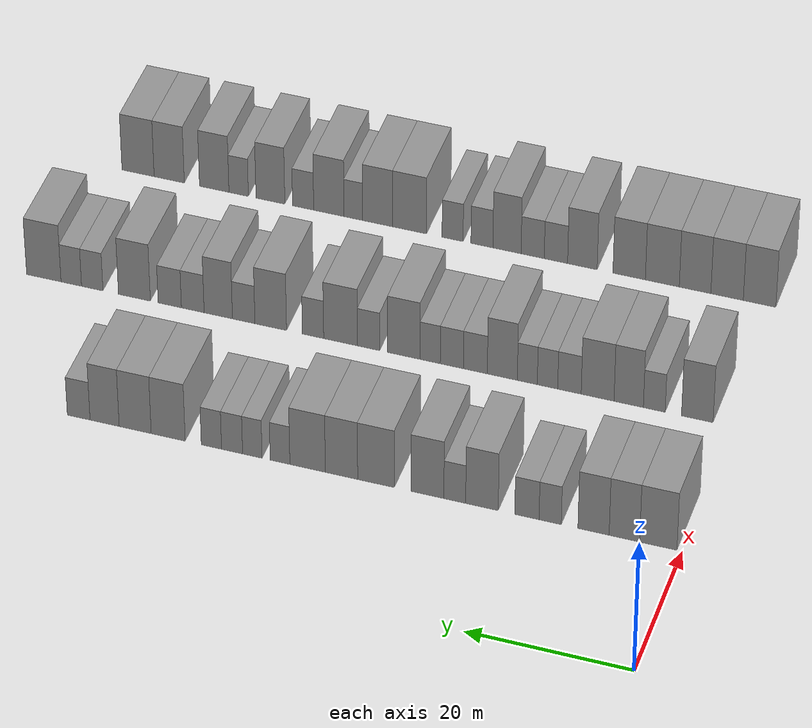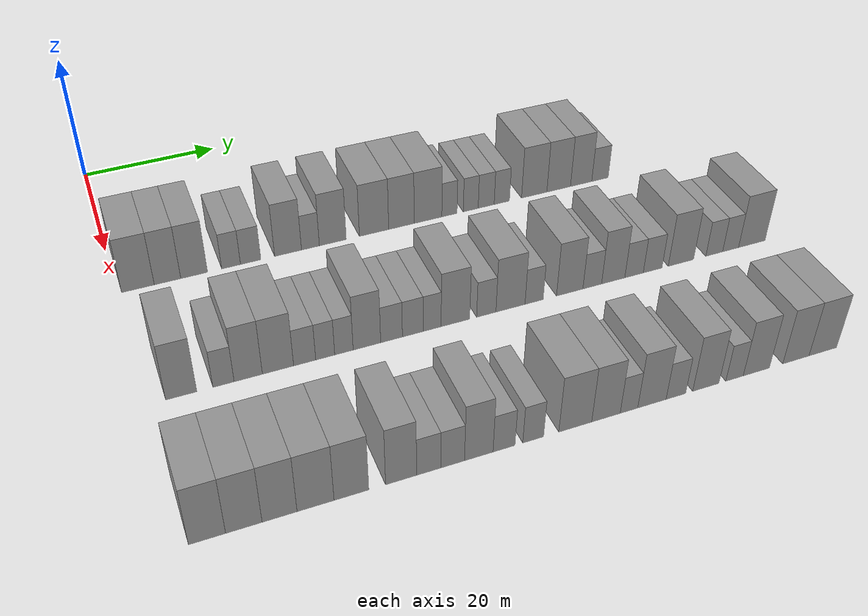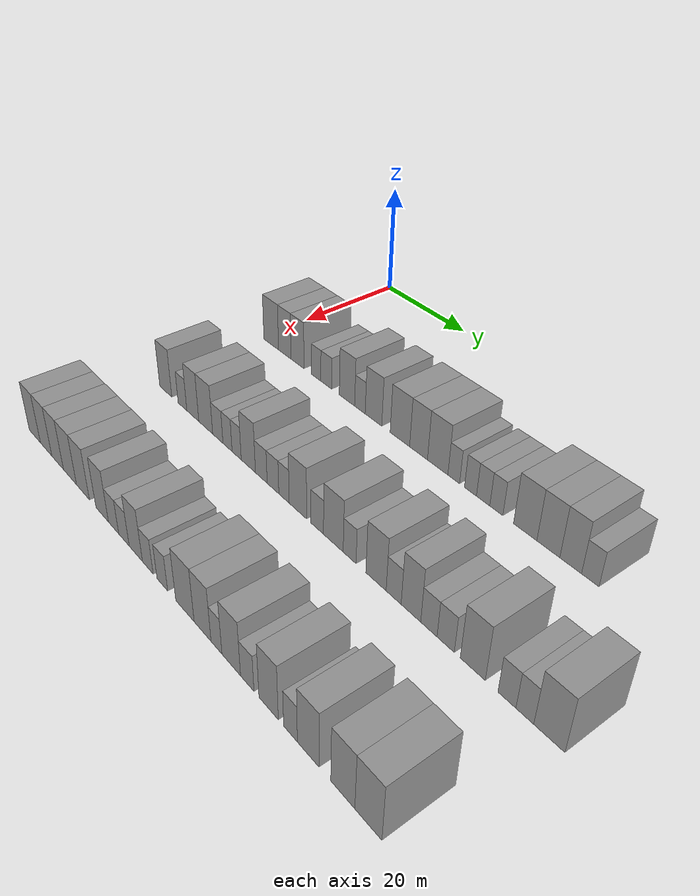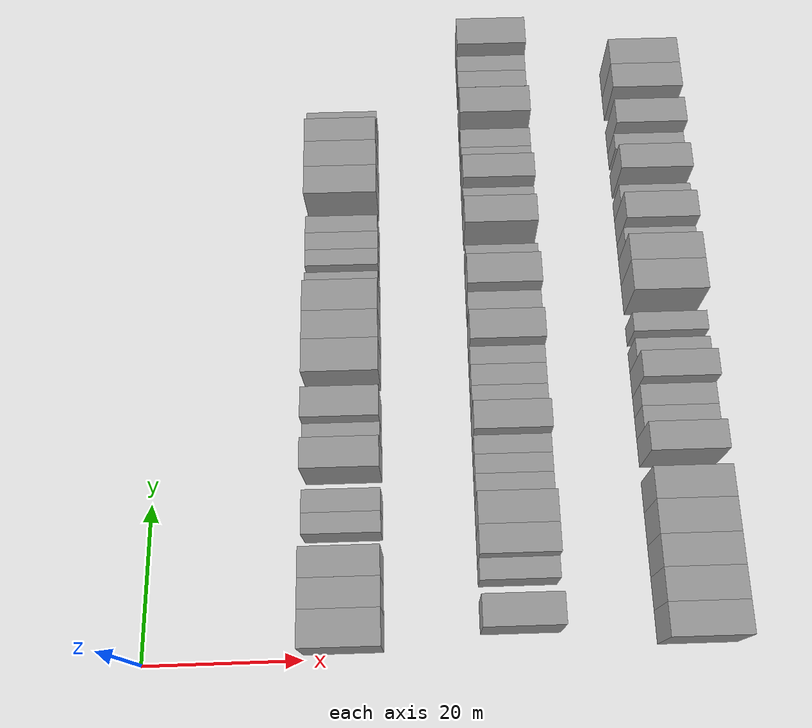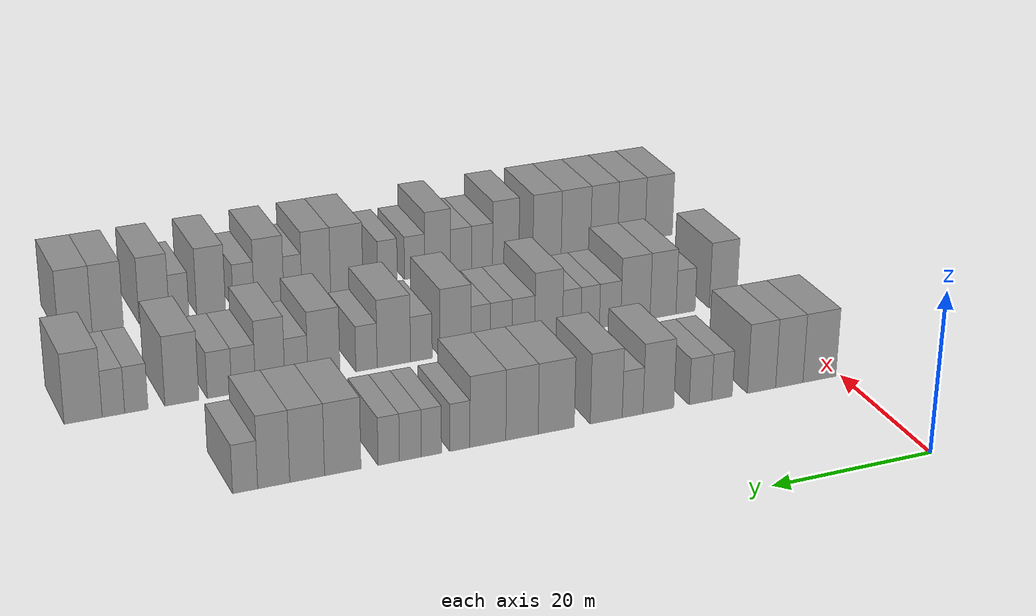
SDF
<sdf version="1.6">
 <world name="default">
  <model name="building_65">
   <static>1</static>
   <pose>25.0000 2.9038 0 0.000000 0.000000 0.000000</pose>
   <link name="link">
    <pose>0 0 4.50 0 0 0</pose>
    <collision name="collision"><geometry><box><size>10.0000 4.4490 9.0000</size></box></geometry></collision>
    <visual name="visual">
     <cast_shadows>0</cast_shadows>
     <geometry><box><size>10.0000 4.4490 9.0000</size></box></geometry>
     <material>
      <script>
       <uri>model://grey_wall/materials/scripts</uri>
       <uri>model://grey_wall/materials/textures</uri>
       <name>vrc/grey_wall</name>
      </script>
     </material>
    </visual>
   </link>
  </model>
  <model name="building_66">
   <static>1</static>
   <pose>25.0000 6.9546 0 0.000000 0.000000 0.000000</pose>
   <link name="link">
    <pose>0 0 4.50 0 0 0</pose>
    <collision name="collision"><geometry><box><size>10.0000 3.6524 9.0000</size></box></geometry></collision>
    <visual name="visual">
     <cast_shadows>0</cast_shadows>
     <geometry><box><size>10.0000 3.6524 9.0000</size></box></geometry>
     <material>
      <script>
       <uri>model://grey_wall/materials/scripts</uri>
       <uri>model://grey_wall/materials/textures</uri>
       <name>vrc/grey_wall</name>
      </script>
     </material>
    </visual>
   </link>
  </model>
  <model name="building_67">
   <static>1</static>
   <pose>25.0000 10.6496 0 0.000000 0.000000 0.000000</pose>
   <link name="link">
    <pose>0 0 4.50 0 0 0</pose>
    <collision name="collision"><geometry><box><size>10.0000 3.7375 9.0000</size></box></geometry></collision>
    <visual name="visual">
     <cast_shadows>0</cast_shadows>
     <geometry><box><size>10.0000 3.7375 9.0000</size></box></geometry>
     <material>
      <script>
       <uri>model://grey_wall/materials/scripts</uri>
       <uri>model://grey_wall/materials/textures</uri>
       <name>vrc/grey_wall</name>
      </script>
     </material>
    </visual>
   </link>
  </model>
  <model name="building_68">
   <static>1</static>
   <pose>25.0000 15.8552 0 0.000000 0.000000 0.000000</pose>
   <link name="link">
    <pose>0 0 3.00 0 0 0</pose>
    <collision name="collision"><geometry><box><size>10.0000 2.6739 6.0000</size></box></geometry></collision>
    <visual name="visual">
     <cast_shadows>0</cast_shadows>
     <geometry><box><size>10.0000 2.6739 6.0000</size></box></geometry>
     <material>
      <script>
       <uri>model://grey_wall/materials/scripts</uri>
       <uri>model://grey_wall/materials/textures</uri>
       <name>vrc/grey_wall</name>
      </script>
     </material>
    </visual>
   </link>
  </model>
  <model name="building_69">
   <static>1</static>
   <pose>25.0000 18.6570 0 0.000000 0.000000 0.000000</pose>
   <link name="link">
    <pose>0 0 3.00 0 0 0</pose>
    <collision name="collision"><geometry><box><size>10.0000 2.9297 6.0000</size></box></geometry></collision>
    <visual name="visual">
     <cast_shadows>0</cast_shadows>
     <geometry><box><size>10.0000 2.9297 6.0000</size></box></geometry>
     <material>
      <script>
       <uri>model://grey_wall/materials/scripts</uri>
       <uri>model://grey_wall/materials/textures</uri>
       <name>vrc/grey_wall</name>
      </script>
     </material>
    </visual>
   </link>
  </model>
  <model name="building_70">
   <static>1</static>
   <pose>25.0000 24.0942 0 0.000000 0.000000 0.000000</pose>
   <link name="link">
    <pose>0 0 4.50 0 0 0</pose>
    <collision name="collision"><geometry><box><size>10.0000 3.9446 9.0000</size></box></geometry></collision>
    <visual name="visual">
     <cast_shadows>0</cast_shadows>
     <geometry><box><size>10.0000 3.9446 9.0000</size></box></geometry>
     <material>
      <script>
       <uri>model://grey_wall/materials/scripts</uri>
       <uri>model://grey_wall/materials/textures</uri>
       <name>vrc/grey_wall</name>
      </script>
     </material>
    </visual>
   </link>
  </model>
  <model name="building_71">
   <static>1</static>
   <pose>25.0000 27.3878 0 0.000000 0.000000 0.000000</pose>
   <link name="link">
    <pose>0 0 3.00 0 0 0</pose>
    <collision name="collision"><geometry><box><size>10.0000 2.6427 6.0000</size></box></geometry></collision>
    <visual name="visual">
     <cast_shadows>0</cast_shadows>
     <geometry><box><size>10.0000 2.6427 6.0000</size></box></geometry>
     <material>
      <script>
       <uri>model://grey_wall/materials/scripts</uri>
       <uri>model://grey_wall/materials/textures</uri>
       <name>vrc/grey_wall</name>
      </script>
     </material>
    </visual>
   </link>
  </model>
  <model name="building_72">
   <static>1</static>
   <pose>25.0000 30.7249 0 0.000000 0.000000 0.000000</pose>
   <link name="link">
    <pose>0 0 4.50 0 0 0</pose>
    <collision name="collision"><geometry><box><size>10.0000 4.0315 9.0000</size></box></geometry></collision>
    <visual name="visual">
     <cast_shadows>0</cast_shadows>
     <geometry><box><size>10.0000 4.0315 9.0000</size></box></geometry>
     <material>
      <script>
       <uri>model://grey_wall/materials/scripts</uri>
       <uri>model://grey_wall/materials/textures</uri>
       <name>vrc/grey_wall</name>
      </script>
     </material>
    </visual>
   </link>
  </model>
  <model name="building_73">
   <static>1</static>
   <pose>25.0000 36.9864 0 0.000000 0.000000 0.000000</pose>
   <link name="link">
    <pose>0 0 4.50 0 0 0</pose>
    <collision name="collision"><geometry><box><size>10.0000 4.4914 9.0000</size></box></geometry></collision>
    <visual name="visual">
     <cast_shadows>0</cast_shadows>
     <geometry><box><size>10.0000 4.4914 9.0000</size></box></geometry>
     <material>
      <script>
       <uri>model://grey_wall/materials/scripts</uri>
       <uri>model://grey_wall/materials/textures</uri>
       <name>vrc/grey_wall</name>
      </script>
     </material>
    </visual>
   </link>
  </model>
  <model name="building_74">
   <static>1</static>
   <pose>25.0000 41.2148 0 0.000000 0.000000 0.000000</pose>
   <link name="link">
    <pose>0 0 4.50 0 0 0</pose>
    <collision name="collision"><geometry><box><size>10.0000 3.9655 9.0000</size></box></geometry></collision>
    <visual name="visual">
     <cast_shadows>0</cast_shadows>
     <geometry><box><size>10.0000 3.9655 9.0000</size></box></geometry>
     <material>
      <script>
       <uri>model://grey_wall/materials/scripts</uri>
       <uri>model://grey_wall/materials/textures</uri>
       <name>vrc/grey_wall</name>
      </script>
     </material>
    </visual>
   </link>
  </model>
  <model name="building_75">
   <static>1</static>
   <pose>25.0000 45.3831 0 0.000000 0.000000 0.000000</pose>
   <link name="link">
    <pose>0 0 4.50 0 0 0</pose>
    <collision name="collision"><geometry><box><size>10.0000 4.3713 9.0000</size></box></geometry></collision>
    <visual name="visual">
     <cast_shadows>0</cast_shadows>
     <geometry><box><size>10.0000 4.3713 9.0000</size></box></geometry>
     <material>
      <script>
       <uri>model://grey_wall/materials/scripts</uri>
       <uri>model://grey_wall/materials/textures</uri>
       <name>vrc/grey_wall</name>
      </script>
     </material>
    </visual>
   </link>
  </model>
  <model name="building_76">
   <static>1</static>
   <pose>25.0000 48.7831 0 0.000000 0.000000 0.000000</pose>
   <link name="link">
    <pose>0 0 3.00 0 0 0</pose>
    <collision name="collision"><geometry><box><size>10.0000 2.4286 6.0000</size></box></geometry></collision>
    <visual name="visual">
     <cast_shadows>0</cast_shadows>
     <geometry><box><size>10.0000 2.4286 6.0000</size></box></geometry>
     <material>
      <script>
       <uri>model://grey_wall/materials/scripts</uri>
       <uri>model://grey_wall/materials/textures</uri>
       <name>vrc/grey_wall</name>
      </script>
     </material>
    </visual>
   </link>
  </model>
  <model name="building_77">
   <static>1</static>
   <pose>25.0000 52.2025 0 0.000000 0.000000 0.000000</pose>
   <link name="link">
    <pose>0 0 3.00 0 0 0</pose>
    <collision name="collision"><geometry><box><size>10.0000 2.4101 6.0000</size></box></geometry></collision>
    <visual name="visual">
     <cast_shadows>0</cast_shadows>
     <geometry><box><size>10.0000 2.4101 6.0000</size></box></geometry>
     <material>
      <script>
       <uri>model://grey_wall/materials/scripts</uri>
       <uri>model://grey_wall/materials/textures</uri>
       <name>vrc/grey_wall</name>
      </script>
     </material>
    </visual>
   </link>
  </model>
  <model name="building_78">
   <static>1</static>
   <pose>25.0000 54.7113 0 0.000000 0.000000 0.000000</pose>
   <link name="link">
    <pose>0 0 3.00 0 0 0</pose>
    <collision name="collision"><geometry><box><size>10.0000 2.6075 6.0000</size></box></geometry></collision>
    <visual name="visual">
     <cast_shadows>0</cast_shadows>
     <geometry><box><size>10.0000 2.6075 6.0000</size></box></geometry>
     <material>
      <script>
       <uri>model://grey_wall/materials/scripts</uri>
       <uri>model://grey_wall/materials/textures</uri>
       <name>vrc/grey_wall</name>
      </script>
     </material>
    </visual>
   </link>
  </model>
  <model name="building_79">
   <static>1</static>
   <pose>25.0000 57.2713 0 0.000000 0.000000 0.000000</pose>
   <link name="link">
    <pose>0 0 3.00 0 0 0</pose>
    <collision name="collision"><geometry><box><size>10.0000 2.5126 6.0000</size></box></geometry></collision>
    <visual name="visual">
     <cast_shadows>0</cast_shadows>
     <geometry><box><size>10.0000 2.5126 6.0000</size></box></geometry>
     <material>
      <script>
       <uri>model://grey_wall/materials/scripts</uri>
       <uri>model://grey_wall/materials/textures</uri>
       <name>vrc/grey_wall</name>
      </script>
     </material>
    </visual>
   </link>
  </model>
  <model name="building_80">
   <static>1</static>
   <pose>25.0000 62.6492 0 0.000000 0.000000 0.000000</pose>
   <link name="link">
    <pose>0 0 4.50 0 0 0</pose>
    <collision name="collision"><geometry><box><size>10.0000 4.2431 9.0000</size></box></geometry></collision>
    <visual name="visual">
     <cast_shadows>0</cast_shadows>
     <geometry><box><size>10.0000 4.2431 9.0000</size></box></geometry>
     <material>
      <script>
       <uri>model://grey_wall/materials/scripts</uri>
       <uri>model://grey_wall/materials/textures</uri>
       <name>vrc/grey_wall</name>
      </script>
     </material>
    </visual>
   </link>
  </model>
  <model name="building_81">
   <static>1</static>
   <pose>25.0000 66.7726 0 0.000000 0.000000 0.000000</pose>
   <link name="link">
    <pose>0 0 4.50 0 0 0</pose>
    <collision name="collision"><geometry><box><size>10.0000 4.0038 9.0000</size></box></geometry></collision>
    <visual name="visual">
     <cast_shadows>0</cast_shadows>
     <geometry><box><size>10.0000 4.0038 9.0000</size></box></geometry>
     <material>
      <script>
       <uri>model://grey_wall/materials/scripts</uri>
       <uri>model://grey_wall/materials/textures</uri>
       <name>vrc/grey_wall</name>
      </script>
     </material>
    </visual>
   </link>
  </model>
  <model name="building_82">
   <static>1</static>
   <pose>25.0000 70.6003 0 0.000000 0.000000 0.000000</pose>
   <link name="link">
    <pose>0 0 4.50 0 0 0</pose>
    <collision name="collision"><geometry><box><size>10.0000 3.6515 9.0000</size></box></geometry></collision>
    <visual name="visual">
     <cast_shadows>0</cast_shadows>
     <geometry><box><size>10.0000 3.6515 9.0000</size></box></geometry>
     <material>
      <script>
       <uri>model://grey_wall/materials/scripts</uri>
       <uri>model://grey_wall/materials/textures</uri>
       <name>vrc/grey_wall</name>
      </script>
     </material>
    </visual>
   </link>
  </model>
  <model name="building_83">
   <static>1</static>
   <pose>25.0000 73.8498 0 0.000000 0.000000 0.000000</pose>
   <link name="link">
    <pose>0 0 3.00 0 0 0</pose>
    <collision name="collision"><geometry><box><size>10.0000 2.8474 6.0000</size></box></geometry></collision>
    <visual name="visual">
     <cast_shadows>0</cast_shadows>
     <geometry><box><size>10.0000 2.8474 6.0000</size></box></geometry>
     <material>
      <script>
       <uri>model://grey_wall/materials/scripts</uri>
       <uri>model://grey_wall/materials/textures</uri>
       <name>vrc/grey_wall</name>
      </script>
     </material>
    </visual>
   </link>
  </model>
  <model name="building_187">
   <static>1</static>
   <pose>47.0000 4.3625 0 0.000000 0.000000 0.000000</pose>
   <link name="link">
    <pose>0 0 4.50 0 0 0</pose>
    <collision name="collision"><geometry><box><size>10.0000 3.8573 9.0000</size></box></geometry></collision>
    <visual name="visual">
     <cast_shadows>0</cast_shadows>
     <geometry><box><size>10.0000 3.8573 9.0000</size></box></geometry>
     <material>
      <script>
       <uri>model://grey_wall/materials/scripts</uri>
       <uri>model://grey_wall/materials/textures</uri>
       <name>vrc/grey_wall</name>
      </script>
     </material>
    </visual>
   </link>
  </model>
  <model name="building_188">
   <static>1</static>
   <pose>47.0000 9.6291 0 0.000000 0.000000 0.000000</pose>
   <link name="link">
    <pose>0 0 3.00 0 0 0</pose>
    <collision name="collision"><geometry><box><size>10.0000 2.6760 6.0000</size></box></geometry></collision>
    <visual name="visual">
     <cast_shadows>0</cast_shadows>
     <geometry><box><size>10.0000 2.6760 6.0000</size></box></geometry>
     <material>
      <script>
       <uri>model://grey_wall/materials/scripts</uri>
       <uri>model://grey_wall/materials/textures</uri>
       <name>vrc/grey_wall</name>
      </script>
     </material>
    </visual>
   </link>
  </model>
  <model name="building_189">
   <static>1</static>
   <pose>47.0000 12.7702 0 0.000000 0.000000 0.000000</pose>
   <link name="link">
    <pose>0 0 4.50 0 0 0</pose>
    <collision name="collision"><geometry><box><size>10.0000 3.6062 9.0000</size></box></geometry></collision>
    <visual name="visual">
     <cast_shadows>0</cast_shadows>
     <geometry><box><size>10.0000 3.6062 9.0000</size></box></geometry>
     <material>
      <script>
       <uri>model://grey_wall/materials/scripts</uri>
       <uri>model://grey_wall/materials/textures</uri>
       <name>vrc/grey_wall</name>
      </script>
     </material>
    </visual>
   </link>
  </model>
  <model name="building_190">
   <static>1</static>
   <pose>47.0000 16.5970 0 0.000000 0.000000 0.000000</pose>
   <link name="link">
    <pose>0 0 4.50 0 0 0</pose>
    <collision name="collision"><geometry><box><size>10.0000 4.0472 9.0000</size></box></geometry></collision>
    <visual name="visual">
     <cast_shadows>0</cast_shadows>
     <geometry><box><size>10.0000 4.0472 9.0000</size></box></geometry>
     <material>
      <script>
       <uri>model://grey_wall/materials/scripts</uri>
       <uri>model://grey_wall/materials/textures</uri>
       <name>vrc/grey_wall</name>
      </script>
     </material>
    </visual>
   </link>
  </model>
  <model name="building_191">
   <static>1</static>
   <pose>47.0000 20.0705 0 0.000000 0.000000 0.000000</pose>
   <link name="link">
    <pose>0 0 3.00 0 0 0</pose>
    <collision name="collision"><geometry><box><size>10.0000 2.8999 6.0000</size></box></geometry></collision>
    <visual name="visual">
     <cast_shadows>0</cast_shadows>
     <geometry><box><size>10.0000 2.8999 6.0000</size></box></geometry>
     <material>
      <script>
       <uri>model://grey_wall/materials/scripts</uri>
       <uri>model://grey_wall/materials/textures</uri>
       <name>vrc/grey_wall</name>
      </script>
     </material>
    </visual>
   </link>
  </model>
  <model name="building_192">
   <static>1</static>
   <pose>47.0000 22.7829 0 0.000000 0.000000 0.000000</pose>
   <link name="link">
    <pose>0 0 3.00 0 0 0</pose>
    <collision name="collision"><geometry><box><size>10.0000 2.5249 6.0000</size></box></geometry></collision>
    <visual name="visual">
     <cast_shadows>0</cast_shadows>
     <geometry><box><size>10.0000 2.5249 6.0000</size></box></geometry>
     <material>
      <script>
       <uri>model://grey_wall/materials/scripts</uri>
       <uri>model://grey_wall/materials/textures</uri>
       <name>vrc/grey_wall</name>
      </script>
     </material>
    </visual>
   </link>
  </model>
  <model name="building_193">
   <static>1</static>
   <pose>47.0000 25.2817 0 0.000000 0.000000 0.000000</pose>
   <link name="link">
    <pose>0 0 3.00 0 0 0</pose>
    <collision name="collision"><geometry><box><size>10.0000 2.4728 6.0000</size></box></geometry></collision>
    <visual name="visual">
     <cast_shadows>0</cast_shadows>
     <geometry><box><size>10.0000 2.4728 6.0000</size></box></geometry>
     <material>
      <script>
       <uri>model://grey_wall/materials/scripts</uri>
       <uri>model://grey_wall/materials/textures</uri>
       <name>vrc/grey_wall</name>
      </script>
     </material>
    </visual>
   </link>
  </model>
  <model name="building_194">
   <static>1</static>
   <pose>47.0000 28.3837 0 0.000000 0.000000 0.000000</pose>
   <link name="link">
    <pose>0 0 4.50 0 0 0</pose>
    <collision name="collision"><geometry><box><size>10.0000 3.7311 9.0000</size></box></geometry></collision>
    <visual name="visual">
     <cast_shadows>0</cast_shadows>
     <geometry><box><size>10.0000 3.7311 9.0000</size></box></geometry>
     <material>
      <script>
       <uri>model://grey_wall/materials/scripts</uri>
       <uri>model://grey_wall/materials/textures</uri>
       <name>vrc/grey_wall</name>
      </script>
     </material>
    </visual>
   </link>
  </model>
  <model name="building_195">
   <static>1</static>
   <pose>47.0000 31.7438 0 0.000000 0.000000 0.000000</pose>
   <link name="link">
    <pose>0 0 3.00 0 0 0</pose>
    <collision name="collision"><geometry><box><size>10.0000 2.9891 6.0000</size></box></geometry></collision>
    <visual name="visual">
     <cast_shadows>0</cast_shadows>
     <geometry><box><size>10.0000 2.9891 6.0000</size></box></geometry>
     <material>
      <script>
       <uri>model://grey_wall/materials/scripts</uri>
       <uri>model://grey_wall/materials/textures</uri>
       <name>vrc/grey_wall</name>
      </script>
     </material>
    </visual>
   </link>
  </model>
  <model name="building_196">
   <static>1</static>
   <pose>47.0000 34.6814 0 0.000000 0.000000 0.000000</pose>
   <link name="link">
    <pose>0 0 3.00 0 0 0</pose>
    <collision name="collision"><geometry><box><size>10.0000 2.8862 6.0000</size></box></geometry></collision>
    <visual name="visual">
     <cast_shadows>0</cast_shadows>
     <geometry><box><size>10.0000 2.8862 6.0000</size></box></geometry>
     <material>
      <script>
       <uri>model://grey_wall/materials/scripts</uri>
       <uri>model://grey_wall/materials/textures</uri>
       <name>vrc/grey_wall</name>
      </script>
     </material>
    </visual>
   </link>
  </model>
  <model name="building_197">
   <static>1</static>
   <pose>47.0000 37.3802 0 0.000000 0.000000 0.000000</pose>
   <link name="link">
    <pose>0 0 3.00 0 0 0</pose>
    <collision name="collision"><geometry><box><size>10.0000 2.5113 6.0000</size></box></geometry></collision>
    <visual name="visual">
     <cast_shadows>0</cast_shadows>
     <geometry><box><size>10.0000 2.5113 6.0000</size></box></geometry>
     <material>
      <script>
       <uri>model://grey_wall/materials/scripts</uri>
       <uri>model://grey_wall/materials/textures</uri>
       <name>vrc/grey_wall</name>
      </script>
     </material>
    </visual>
   </link>
  </model>
  <model name="building_198">
   <static>1</static>
   <pose>47.0000 40.6746 0 0.000000 0.000000 0.000000</pose>
   <link name="link">
    <pose>0 0 4.50 0 0 0</pose>
    <collision name="collision"><geometry><box><size>10.0000 4.0774 9.0000</size></box></geometry></collision>
    <visual name="visual">
     <cast_shadows>0</cast_shadows>
     <geometry><box><size>10.0000 4.0774 9.0000</size></box></geometry>
     <material>
      <script>
       <uri>model://grey_wall/materials/scripts</uri>
       <uri>model://grey_wall/materials/textures</uri>
       <name>vrc/grey_wall</name>
      </script>
     </material>
    </visual>
   </link>
  </model>
  <model name="building_199">
   <static>1</static>
   <pose>47.0000 45.1107 0 0.000000 0.000000 0.000000</pose>
   <link name="link">
    <pose>0 0 3.00 0 0 0</pose>
    <collision name="collision"><geometry><box><size>10.0000 2.7949 6.0000</size></box></geometry></collision>
    <visual name="visual">
     <cast_shadows>0</cast_shadows>
     <geometry><box><size>10.0000 2.7949 6.0000</size></box></geometry>
     <material>
      <script>
       <uri>model://grey_wall/materials/scripts</uri>
       <uri>model://grey_wall/materials/textures</uri>
       <name>vrc/grey_wall</name>
      </script>
     </material>
    </visual>
   </link>
  </model>
  <model name="building_200">
   <static>1</static>
   <pose>47.0000 48.6398 0 0.000000 0.000000 0.000000</pose>
   <link name="link">
    <pose>0 0 4.50 0 0 0</pose>
    <collision name="collision"><geometry><box><size>10.0000 4.2632 9.0000</size></box></geometry></collision>
    <visual name="visual">
     <cast_shadows>0</cast_shadows>
     <geometry><box><size>10.0000 4.2632 9.0000</size></box></geometry>
     <material>
      <script>
       <uri>model://grey_wall/materials/scripts</uri>
       <uri>model://grey_wall/materials/textures</uri>
       <name>vrc/grey_wall</name>
      </script>
     </material>
    </visual>
   </link>
  </model>
  <model name="building_201">
   <static>1</static>
   <pose>47.0000 52.1205 0 0.000000 0.000000 0.000000</pose>
   <link name="link">
    <pose>0 0 3.00 0 0 0</pose>
    <collision name="collision"><geometry><box><size>10.0000 2.6982 6.0000</size></box></geometry></collision>
    <visual name="visual">
     <cast_shadows>0</cast_shadows>
     <geometry><box><size>10.0000 2.6982 6.0000</size></box></geometry>
     <material>
      <script>
       <uri>model://grey_wall/materials/scripts</uri>
       <uri>model://grey_wall/materials/textures</uri>
       <name>vrc/grey_wall</name>
      </script>
     </material>
    </visual>
   </link>
  </model>
  <model name="building_202">
   <static>1</static>
   <pose>47.0000 57.4755 0 0.000000 0.000000 0.000000</pose>
   <link name="link">
    <pose>0 0 4.50 0 0 0</pose>
    <collision name="collision"><geometry><box><size>10.0000 4.0118 9.0000</size></box></geometry></collision>
    <visual name="visual">
     <cast_shadows>0</cast_shadows>
     <geometry><box><size>10.0000 4.0118 9.0000</size></box></geometry>
     <material>
      <script>
       <uri>model://grey_wall/materials/scripts</uri>
       <uri>model://grey_wall/materials/textures</uri>
       <name>vrc/grey_wall</name>
      </script>
     </material>
    </visual>
   </link>
  </model>
  <model name="building_203">
   <static>1</static>
   <pose>47.0000 60.9143 0 0.000000 0.000000 0.000000</pose>
   <link name="link">
    <pose>0 0 3.00 0 0 0</pose>
    <collision name="collision"><geometry><box><size>10.0000 2.8658 6.0000</size></box></geometry></collision>
    <visual name="visual">
     <cast_shadows>0</cast_shadows>
     <geometry><box><size>10.0000 2.8658 6.0000</size></box></geometry>
     <material>
      <script>
       <uri>model://grey_wall/materials/scripts</uri>
       <uri>model://grey_wall/materials/textures</uri>
       <name>vrc/grey_wall</name>
      </script>
     </material>
    </visual>
   </link>
  </model>
  <model name="building_204">
   <static>1</static>
   <pose>47.0000 64.1534 0 0.000000 0.000000 0.000000</pose>
   <link name="link">
    <pose>0 0 4.50 0 0 0</pose>
    <collision name="collision"><geometry><box><size>10.0000 3.6124 9.0000</size></box></geometry></collision>
    <visual name="visual">
     <cast_shadows>0</cast_shadows>
     <geometry><box><size>10.0000 3.6124 9.0000</size></box></geometry>
     <material>
      <script>
       <uri>model://grey_wall/materials/scripts</uri>
       <uri>model://grey_wall/materials/textures</uri>
       <name>vrc/grey_wall</name>
      </script>
     </material>
    </visual>
   </link>
  </model>
  <model name="building_205">
   <static>1</static>
   <pose>47.0000 67.4120 0 0.000000 0.000000 0.000000</pose>
   <link name="link">
    <pose>0 0 3.00 0 0 0</pose>
    <collision name="collision"><geometry><box><size>10.0000 2.9048 6.0000</size></box></geometry></collision>
    <visual name="visual">
     <cast_shadows>0</cast_shadows>
     <geometry><box><size>10.0000 2.9048 6.0000</size></box></geometry>
     <material>
      <script>
       <uri>model://grey_wall/materials/scripts</uri>
       <uri>model://grey_wall/materials/textures</uri>
       <name>vrc/grey_wall</name>
      </script>
     </material>
    </visual>
   </link>
  </model>
  <model name="building_206">
   <static>1</static>
   <pose>47.0000 70.3535 0 0.000000 0.000000 0.000000</pose>
   <link name="link">
    <pose>0 0 3.00 0 0 0</pose>
    <collision name="collision"><geometry><box><size>10.0000 2.9783 6.0000</size></box></geometry></collision>
    <visual name="visual">
     <cast_shadows>0</cast_shadows>
     <geometry><box><size>10.0000 2.9783 6.0000</size></box></geometry>
     <material>
      <script>
       <uri>model://grey_wall/materials/scripts</uri>
       <uri>model://grey_wall/materials/textures</uri>
       <name>vrc/grey_wall</name>
      </script>
     </material>
    </visual>
   </link>
  </model>
  <model name="building_207">
   <static>1</static>
   <pose>47.0000 74.8918 0 0.000000 0.000000 0.000000</pose>
   <link name="link">
    <pose>0 0 4.50 0 0 0</pose>
    <collision name="collision"><geometry><box><size>10.0000 4.0983 9.0000</size></box></geometry></collision>
    <visual name="visual">
     <cast_shadows>0</cast_shadows>
     <geometry><box><size>10.0000 4.0983 9.0000</size></box></geometry>
     <material>
      <script>
       <uri>model://grey_wall/materials/scripts</uri>
       <uri>model://grey_wall/materials/textures</uri>
       <name>vrc/grey_wall</name>
      </script>
     </material>
    </visual>
   </link>
  </model>
  <model name="building_208">
   <static>1</static>
   <pose>47.0000 80.3232 0 0.000000 0.000000 0.000000</pose>
   <link name="link">
    <pose>0 0 3.00 0 0 0</pose>
    <collision name="collision"><geometry><box><size>10.0000 2.7646 6.0000</size></box></geometry></collision>
    <visual name="visual">
     <cast_shadows>0</cast_shadows>
     <geometry><box><size>10.0000 2.7646 6.0000</size></box></geometry>
     <material>
      <script>
       <uri>model://grey_wall/materials/scripts</uri>
       <uri>model://grey_wall/materials/textures</uri>
       <name>vrc/grey_wall</name>
      </script>
     </material>
    </visual>
   </link>
  </model>
  <model name="building_209">
   <static>1</static>
   <pose>47.0000 83.0316 0 0.000000 0.000000 0.000000</pose>
   <link name="link">
    <pose>0 0 3.00 0 0 0</pose>
    <collision name="collision"><geometry><box><size>10.0000 2.6522 6.0000</size></box></geometry></collision>
    <visual name="visual">
     <cast_shadows>0</cast_shadows>
     <geometry><box><size>10.0000 2.6522 6.0000</size></box></geometry>
     <material>
      <script>
       <uri>model://grey_wall/materials/scripts</uri>
       <uri>model://grey_wall/materials/textures</uri>
       <name>vrc/grey_wall</name>
      </script>
     </material>
    </visual>
   </link>
  </model>
  <model name="building_210">
   <static>1</static>
   <pose>47.0000 86.5829 0 0.000000 0.000000 0.000000</pose>
   <link name="link">
    <pose>0 0 4.50 0 0 0</pose>
    <collision name="collision"><geometry><box><size>10.0000 4.4505 9.0000</size></box></geometry></collision>
    <visual name="visual">
     <cast_shadows>0</cast_shadows>
     <geometry><box><size>10.0000 4.4505 9.0000</size></box></geometry>
     <material>
      <script>
       <uri>model://grey_wall/materials/scripts</uri>
       <uri>model://grey_wall/materials/textures</uri>
       <name>vrc/grey_wall</name>
      </script>
     </material>
    </visual>
   </link>
  </model>
  <model name="building_320">
   <static>1</static>
   <pose>69.0000 2.6721 0 0.000000 0.000000 0.000000</pose>
   <link name="link">
    <pose>0 0 4.50 0 0 0</pose>
    <collision name="collision"><geometry><box><size>10.0000 4.0631 9.0000</size></box></geometry></collision>
    <visual name="visual">
     <cast_shadows>0</cast_shadows>
     <geometry><box><size>10.0000 4.0631 9.0000</size></box></geometry>
     <material>
      <script>
       <uri>model://grey_wall/materials/scripts</uri>
       <uri>model://grey_wall/materials/textures</uri>
       <name>vrc/grey_wall</name>
      </script>
     </material>
    </visual>
   </link>
  </model>
  <model name="building_321">
   <static>1</static>
   <pose>69.0000 6.7342 0 0.000000 0.000000 0.000000</pose>
   <link name="link">
    <pose>0 0 4.50 0 0 0</pose>
    <collision name="collision"><geometry><box><size>10.0000 4.0611 9.0000</size></box></geometry></collision>
    <visual name="visual">
     <cast_shadows>0</cast_shadows>
     <geometry><box><size>10.0000 4.0611 9.0000</size></box></geometry>
     <material>
      <script>
       <uri>model://grey_wall/materials/scripts</uri>
       <uri>model://grey_wall/materials/textures</uri>
       <name>vrc/grey_wall</name>
      </script>
     </material>
    </visual>
   </link>
  </model>
  <model name="building_322">
   <static>1</static>
   <pose>69.0000 10.7462 0 0.000000 0.000000 0.000000</pose>
   <link name="link">
    <pose>0 0 4.50 0 0 0</pose>
    <collision name="collision"><geometry><box><size>10.0000 3.9628 9.0000</size></box></geometry></collision>
    <visual name="visual">
     <cast_shadows>0</cast_shadows>
     <geometry><box><size>10.0000 3.9628 9.0000</size></box></geometry>
     <material>
      <script>
       <uri>model://grey_wall/materials/scripts</uri>
       <uri>model://grey_wall/materials/textures</uri>
       <name>vrc/grey_wall</name>
      </script>
     </material>
    </visual>
   </link>
  </model>
  <model name="building_323">
   <static>1</static>
   <pose>69.0000 14.8634 0 0.000000 0.000000 0.000000</pose>
   <link name="link">
    <pose>0 0 4.50 0 0 0</pose>
    <collision name="collision"><geometry><box><size>10.0000 4.2716 9.0000</size></box></geometry></collision>
    <visual name="visual">
     <cast_shadows>0</cast_shadows>
     <geometry><box><size>10.0000 4.2716 9.0000</size></box></geometry>
     <material>
      <script>
       <uri>model://grey_wall/materials/scripts</uri>
       <uri>model://grey_wall/materials/textures</uri>
       <name>vrc/grey_wall</name>
      </script>
     </material>
    </visual>
   </link>
  </model>
  <model name="building_324">
   <static>1</static>
   <pose>69.0000 19.0430 0 0.000000 0.000000 0.000000</pose>
   <link name="link">
    <pose>0 0 4.50 0 0 0</pose>
    <collision name="collision"><geometry><box><size>10.0000 4.0877 9.0000</size></box></geometry></collision>
    <visual name="visual">
     <cast_shadows>0</cast_shadows>
     <geometry><box><size>10.0000 4.0877 9.0000</size></box></geometry>
     <material>
      <script>
       <uri>model://grey_wall/materials/scripts</uri>
       <uri>model://grey_wall/materials/textures</uri>
       <name>vrc/grey_wall</name>
      </script>
     </material>
    </visual>
   </link>
  </model>
  <model name="building_325">
   <static>1</static>
   <pose>69.0000 24.9586 0 0.000000 0.000000 0.000000</pose>
   <link name="link">
    <pose>0 0 4.50 0 0 0</pose>
    <collision name="collision"><geometry><box><size>10.0000 3.7434 9.0000</size></box></geometry></collision>
    <visual name="visual">
     <cast_shadows>0</cast_shadows>
     <geometry><box><size>10.0000 3.7434 9.0000</size></box></geometry>
     <material>
      <script>
       <uri>model://grey_wall/materials/scripts</uri>
       <uri>model://grey_wall/materials/textures</uri>
       <name>vrc/grey_wall</name>
      </script>
     </material>
    </visual>
   </link>
  </model>
  <model name="building_326">
   <static>1</static>
   <pose>69.0000 28.3144 0 0.000000 0.000000 0.000000</pose>
   <link name="link">
    <pose>0 0 3.00 0 0 0</pose>
    <collision name="collision"><geometry><box><size>10.0000 2.9682 6.0000</size></box></geometry></collision>
    <visual name="visual">
     <cast_shadows>0</cast_shadows>
     <geometry><box><size>10.0000 2.9682 6.0000</size></box></geometry>
     <material>
      <script>
       <uri>model://grey_wall/materials/scripts</uri>
       <uri>model://grey_wall/materials/textures</uri>
       <name>vrc/grey_wall</name>
      </script>
     </material>
    </visual>
   </link>
  </model>
  <model name="building_327">
   <static>1</static>
   <pose>69.0000 31.2705 0 0.000000 0.000000 0.000000</pose>
   <link name="link">
    <pose>0 0 3.00 0 0 0</pose>
    <collision name="collision"><geometry><box><size>10.0000 2.9441 6.0000</size></box></geometry></collision>
    <visual name="visual">
     <cast_shadows>0</cast_shadows>
     <geometry><box><size>10.0000 2.9441 6.0000</size></box></geometry>
     <material>
      <script>
       <uri>model://grey_wall/materials/scripts</uri>
       <uri>model://grey_wall/materials/textures</uri>
       <name>vrc/grey_wall</name>
      </script>
     </material>
    </visual>
   </link>
  </model>
  <model name="building_328">
   <static>1</static>
   <pose>69.0000 34.5432 0 0.000000 0.000000 0.000000</pose>
   <link name="link">
    <pose>0 0 4.50 0 0 0</pose>
    <collision name="collision"><geometry><box><size>10.0000 3.6013 9.0000</size></box></geometry></collision>
    <visual name="visual">
     <cast_shadows>0</cast_shadows>
     <geometry><box><size>10.0000 3.6013 9.0000</size></box></geometry>
     <material>
      <script>
       <uri>model://grey_wall/materials/scripts</uri>
       <uri>model://grey_wall/materials/textures</uri>
       <name>vrc/grey_wall</name>
      </script>
     </material>
    </visual>
   </link>
  </model>
  <model name="building_329">
   <static>1</static>
   <pose>69.0000 37.7491 0 0.000000 0.000000 0.000000</pose>
   <link name="link">
    <pose>0 0 3.00 0 0 0</pose>
    <collision name="collision"><geometry><box><size>10.0000 2.8104 6.0000</size></box></geometry></collision>
    <visual name="visual">
     <cast_shadows>0</cast_shadows>
     <geometry><box><size>10.0000 2.8104 6.0000</size></box></geometry>
     <material>
      <script>
       <uri>model://grey_wall/materials/scripts</uri>
       <uri>model://grey_wall/materials/textures</uri>
       <name>vrc/grey_wall</name>
      </script>
     </material>
    </visual>
   </link>
  </model>
  <model name="building_330">
   <static>1</static>
   <pose>69.0000 41.5037 0 0.000000 0.000000 0.000000</pose>
   <link name="link">
    <pose>0 0 3.00 0 0 0</pose>
    <collision name="collision"><geometry><box><size>10.0000 2.6988 6.0000</size></box></geometry></collision>
    <visual name="visual">
     <cast_shadows>0</cast_shadows>
     <geometry><box><size>10.0000 2.6988 6.0000</size></box></geometry>
     <material>
      <script>
       <uri>model://grey_wall/materials/scripts</uri>
       <uri>model://grey_wall/materials/textures</uri>
       <name>vrc/grey_wall</name>
      </script>
     </material>
    </visual>
   </link>
  </model>
  <model name="building_331">
   <static>1</static>
   <pose>69.0000 47.0413 0 0.000000 0.000000 0.000000</pose>
   <link name="link">
    <pose>0 0 4.50 0 0 0</pose>
    <collision name="collision"><geometry><box><size>10.0000 4.3763 9.0000</size></box></geometry></collision>
    <visual name="visual">
     <cast_shadows>0</cast_shadows>
     <geometry><box><size>10.0000 4.3763 9.0000</size></box></geometry>
     <material>
      <script>
       <uri>model://grey_wall/materials/scripts</uri>
       <uri>model://grey_wall/materials/textures</uri>
       <name>vrc/grey_wall</name>
      </script>
     </material>
    </visual>
   </link>
  </model>
  <model name="building_332">
   <static>1</static>
   <pose>69.0000 51.1576 0 0.000000 0.000000 0.000000</pose>
   <link name="link">
    <pose>0 0 4.50 0 0 0</pose>
    <collision name="collision"><geometry><box><size>10.0000 3.8564 9.0000</size></box></geometry></collision>
    <visual name="visual">
     <cast_shadows>0</cast_shadows>
     <geometry><box><size>10.0000 3.8564 9.0000</size></box></geometry>
     <material>
      <script>
       <uri>model://grey_wall/materials/scripts</uri>
       <uri>model://grey_wall/materials/textures</uri>
       <name>vrc/grey_wall</name>
      </script>
     </material>
    </visual>
   </link>
  </model>
  <model name="building_333">
   <static>1</static>
   <pose>69.0000 54.2892 0 0.000000 0.000000 0.000000</pose>
   <link name="link">
    <pose>0 0 3.00 0 0 0</pose>
    <collision name="collision"><geometry><box><size>10.0000 2.4066 6.0000</size></box></geometry></collision>
    <visual name="visual">
     <cast_shadows>0</cast_shadows>
     <geometry><box><size>10.0000 2.4066 6.0000</size></box></geometry>
     <material>
      <script>
       <uri>model://grey_wall/materials/scripts</uri>
       <uri>model://grey_wall/materials/textures</uri>
       <name>vrc/grey_wall</name>
      </script>
     </material>
    </visual>
   </link>
  </model>
  <model name="building_334">
   <static>1</static>
   <pose>69.0000 57.4651 0 0.000000 0.000000 0.000000</pose>
   <link name="link">
    <pose>0 0 4.50 0 0 0</pose>
    <collision name="collision"><geometry><box><size>10.0000 3.9452 9.0000</size></box></geometry></collision>
    <visual name="visual">
     <cast_shadows>0</cast_shadows>
     <geometry><box><size>10.0000 3.9452 9.0000</size></box></geometry>
     <material>
      <script>
       <uri>model://grey_wall/materials/scripts</uri>
       <uri>model://grey_wall/materials/textures</uri>
       <name>vrc/grey_wall</name>
      </script>
     </material>
    </visual>
   </link>
  </model>
  <model name="building_335">
   <static>1</static>
   <pose>69.0000 60.8118 0 0.000000 0.000000 0.000000</pose>
   <link name="link">
    <pose>0 0 3.00 0 0 0</pose>
    <collision name="collision"><geometry><box><size>10.0000 2.7482 6.0000</size></box></geometry></collision>
    <visual name="visual">
     <cast_shadows>0</cast_shadows>
     <geometry><box><size>10.0000 2.7482 6.0000</size></box></geometry>
     <material>
      <script>
       <uri>model://grey_wall/materials/scripts</uri>
       <uri>model://grey_wall/materials/textures</uri>
       <name>vrc/grey_wall</name>
      </script>
     </material>
    </visual>
   </link>
  </model>
  <model name="building_336">
   <static>1</static>
   <pose>69.0000 65.0671 0 0.000000 0.000000 0.000000</pose>
   <link name="link">
    <pose>0 0 4.50 0 0 0</pose>
    <collision name="collision"><geometry><box><size>10.0000 3.7625 9.0000</size></box></geometry></collision>
    <visual name="visual">
     <cast_shadows>0</cast_shadows>
     <geometry><box><size>10.0000 3.7625 9.0000</size></box></geometry>
     <material>
      <script>
       <uri>model://grey_wall/materials/scripts</uri>
       <uri>model://grey_wall/materials/textures</uri>
       <name>vrc/grey_wall</name>
      </script>
     </material>
    </visual>
   </link>
  </model>
  <model name="building_337">
   <static>1</static>
   <pose>69.0000 69.2173 0 0.000000 0.000000 0.000000</pose>
   <link name="link">
    <pose>0 0 3.00 0 0 0</pose>
    <collision name="collision"><geometry><box><size>10.0000 2.5379 6.0000</size></box></geometry></collision>
    <visual name="visual">
     <cast_shadows>0</cast_shadows>
     <geometry><box><size>10.0000 2.5379 6.0000</size></box></geometry>
     <material>
      <script>
       <uri>model://grey_wall/materials/scripts</uri>
       <uri>model://grey_wall/materials/textures</uri>
       <name>vrc/grey_wall</name>
      </script>
     </material>
    </visual>
   </link>
  </model>
  <model name="building_338">
   <static>1</static>
   <pose>69.0000 72.4158 0 0.000000 0.000000 0.000000</pose>
   <link name="link">
    <pose>0 0 4.50 0 0 0</pose>
    <collision name="collision"><geometry><box><size>10.0000 3.8590 9.0000</size></box></geometry></collision>
    <visual name="visual">
     <cast_shadows>0</cast_shadows>
     <geometry><box><size>10.0000 3.8590 9.0000</size></box></geometry>
     <material>
      <script>
       <uri>model://grey_wall/materials/scripts</uri>
       <uri>model://grey_wall/materials/textures</uri>
       <name>vrc/grey_wall</name>
      </script>
     </material>
    </visual>
   </link>
  </model>
  <model name="building_339">
   <static>1</static>
   <pose>69.0000 78.3319 0 0.000000 0.000000 0.000000</pose>
   <link name="link">
    <pose>0 0 4.50 0 0 0</pose>
    <collision name="collision"><geometry><box><size>10.0000 3.9731 9.0000</size></box></geometry></collision>
    <visual name="visual">
     <cast_shadows>0</cast_shadows>
     <geometry><box><size>10.0000 3.9731 9.0000</size></box></geometry>
     <material>
      <script>
       <uri>model://grey_wall/materials/scripts</uri>
       <uri>model://grey_wall/materials/textures</uri>
       <name>vrc/grey_wall</name>
      </script>
     </material>
    </visual>
   </link>
  </model>
  <model name="building_340">
   <static>1</static>
   <pose>69.0000 82.4355 0 0.000000 0.000000 0.000000</pose>
   <link name="link">
    <pose>0 0 4.50 0 0 0</pose>
    <collision name="collision"><geometry><box><size>10.0000 4.2342 9.0000</size></box></geometry></collision>
    <visual name="visual">
     <cast_shadows>0</cast_shadows>
     <geometry><box><size>10.0000 4.2342 9.0000</size></box></geometry>
     <material>
      <script>
       <uri>model://grey_wall/materials/scripts</uri>
       <uri>model://grey_wall/materials/textures</uri>
       <name>vrc/grey_wall</name>
      </script>
     </material>
    </visual>
   </link>
  </model>
 </world>
</sdf>
